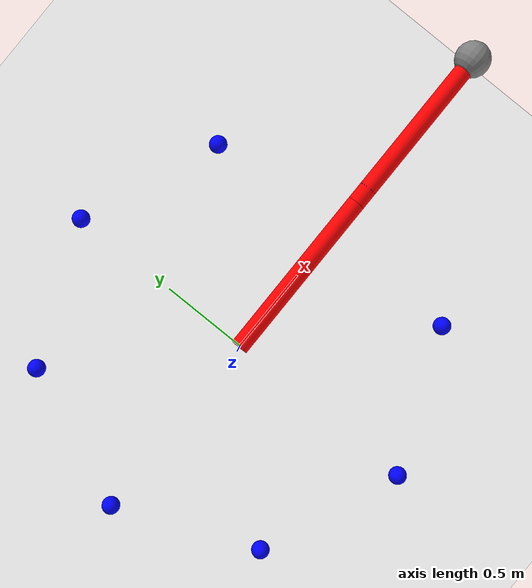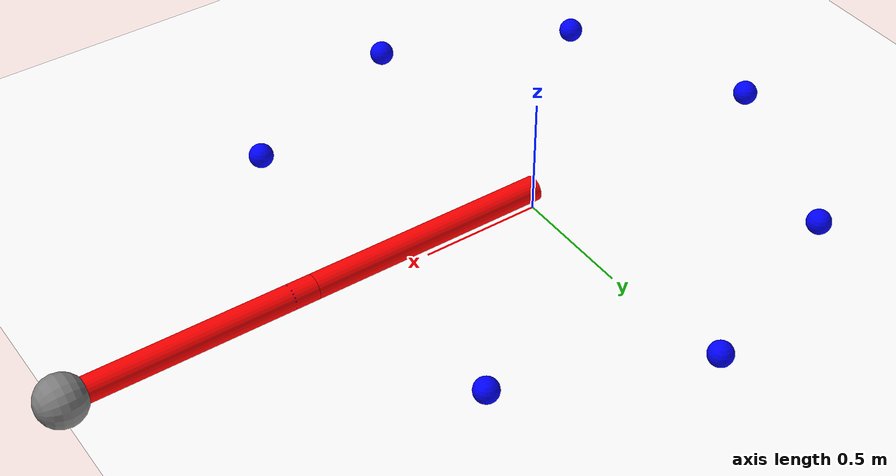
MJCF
<mujoco>
	<asset>
		<material name="red"   rgba="1 0 0 1"/>
		<material name="green" rgba="0 1 0 1"/>
		<material name="blue"  rgba="0 0 1 1"/>
		<material name="white" rgba="1 1 1 1"/>
		<material name="gray"  rgba=".5 .5 .5 1"/>
	</asset>

    <worldbody>
        <light diffuse=".5 .5 .5" pos="0 0 10" dir="0 0 -1"/>
        <geom type="plane" size="2 2 0.1" rgba="1 1 1 1"/>

        <body name="link 0" pos="0.5 0 0.1" euler="0 90 0">
            <joint name="joint 0" type="hinge" axis="-1 0 0" pos="0 0 -0.5"/>
            <geom name="geom link 0" type="cylinder" size="0.05 0.5" material="red"/>
            <body name="link 1" pos="0 0 1.0" euler="0 0 0">
                <joint name="joint 1" type="hinge" axis="-1 0 0" pos="0 0 -0.5"/>
                <geom name="geom link 1" type="cylinder" size="0.05 0.5" material="red"/>
                <site name="tip" size="0.1" pos="0 0 0.5"/>
            </body>
        </body>

        <body name="link 0 shade" pos="0.5 0 0.1" euler="0 90 0">
            <joint name="joint 0 shade" type="hinge" axis="-1 0 0" pos="0 0 -0.5"/>
            <geom name="geom link 0 shade" type="cylinder" size="0.05 0.5" material="green"/>
            <body name="link 1 shade" pos="0 0 1.0" euler="0 0 0">
                <joint name="joint 1 shade" type="hinge" axis="-1 0 0" pos="0 0 -0.5"/>
                <geom name="geom link 1 shade" type="cylinder" size="0.05 0.5" material="green"/>
            </body>
        </body>

        <body name="obstacle 0">
            <geom name="geom obstacle 0" type="sphere" size="0.05" pos="1.1 0.0 0.1" material="blue"/>
        </body>
        <body name="obstacle 1">
            <geom name="geom obstacle 1" type="sphere" size="0.05" pos="0.7778174593052024 0.7778174593052023 0.1" material="blue"/>
        </body>
        <body name="obstacle 2">
            <geom name="geom obstacle 2" type="sphere" size="0.05" pos="6.735557395310444e-17 1.1 0.1" material="blue"/>
        </body>
        <body name="obstacle 3">
            <geom name="geom obstacle 3" type="sphere" size="0.05" pos="-0.7778174593052023 0.7778174593052024 0.1" material="blue"/>
        </body>
        <body name="obstacle 4">
            <geom name="geom obstacle 4" type="sphere" size="0.05" pos="-1.1 1.3471114790620887e-16 0.1" material="blue"/>
        </body>
        <body name="obstacle 5">
            <geom name="geom obstacle 5" type="sphere" size="0.05" pos="-0.7778174593052025 -0.7778174593052023 0.1" material="blue"/>
        </body>
        <body name="obstacle 6">
            <geom name="geom obstacle 6" type="sphere" size="0.05" pos="-2.0206672185931328e-16 -1.1 0.1" material="blue"/>
        </body>
        <body name="obstacle 7">
            <geom name="geom obstacle 7" type="sphere" size="0.05" pos="0.7778174593052022 -0.7778174593052025 0.1" material="blue"/>
        </body>

    </worldbody>

    <contact>
        <exclude body1="link 0 shade" body2="link 1 shade"/>
        <exclude body1="link 0 shade" body2="link 0"/>
        <exclude body1="link 0 shade" body2="link 1"/>
        <exclude body1="link 1 shade" body2="link 0"/>
        <exclude body1="link 1 shade" body2="link 1"/>
        <exclude body1="link 0 shade" body2="obstacle 0"/>
        <exclude body1="link 0 shade" body2="obstacle 1"/>
        <exclude body1="link 0 shade" body2="obstacle 2"/>
        <exclude body1="link 0 shade" body2="obstacle 3"/>
        <exclude body1="link 0 shade" body2="obstacle 4"/>
        <exclude body1="link 0 shade" body2="obstacle 5"/>
        <exclude body1="link 0 shade" body2="obstacle 6"/>
        <exclude body1="link 0 shade" body2="obstacle 7"/>
        <exclude body1="link 1 shade" body2="obstacle 0"/>
        <exclude body1="link 1 shade" body2="obstacle 1"/>
        <exclude body1="link 1 shade" body2="obstacle 2"/>
        <exclude body1="link 1 shade" body2="obstacle 3"/>
        <exclude body1="link 1 shade" body2="obstacle 4"/>
        <exclude body1="link 1 shade" body2="obstacle 5"/>
        <exclude body1="link 1 shade" body2="obstacle 6"/>
        <exclude body1="link 1 shade" body2="obstacle 7"/>
    </contact>

    <sensor>
      <framepos objtype="site" objname="tip"/>
    </sensor>
</mujoco>
